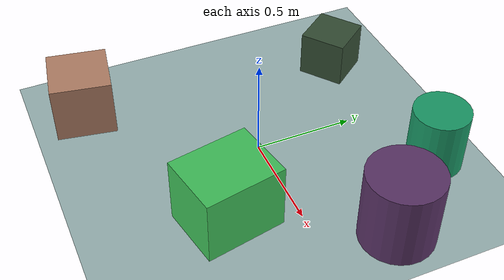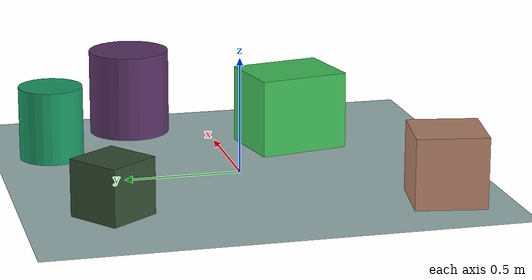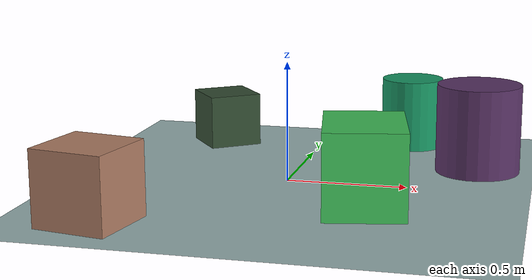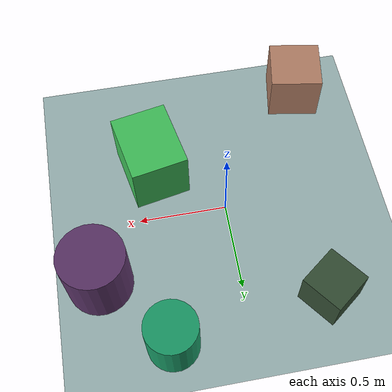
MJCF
<mujoco>
   <asset>
<texture type="skybox" builtin="gradient" rgb1="0.5 0.8 0.3" rgb2="0.5 0.1 0.8" width="500" height="500"/>
<texture name="checker_0" builtin="checker" rgb1="0.5 0.2 0.5" rgb2="0.2 0.2 0.3" width="500" height="500"/>
<texture name="checker_1" builtin="checker" rgb1="0.0 0.6 0.4" rgb2="0.4 0.0 0.0" width="500" height="500"/>
<texture name="flat_2" builtin="flat" rgb1="0.1 0.6 0.4" rgb2="0.1 0.6 0.4"  width="500" height="500"/>
<texture name="gradient_3" builtin="gradient" rgb1="0.9 0.3 0.7" rgb2="0.5 0.7 0.1" width="500" height="500"/>
<texture name="gradient_4" builtin="gradient" rgb1="0.4 0.6 0.4" rgb2="0.1 0.9 0.3" width="500" height="500"/><material name="checker_0_mat" reflectance="0.48493816401581014" texrepeat="6 6" texture="checker_0" texuniform="false" />
<material name="checker_1_mat" reflectance="0.716302056376829" texrepeat="10 10" texture="checker_1" texuniform="false" />
<material name="flat_2_mat" reflectance="0.942341516664423" texture="flat_2" texuniform="true"/>
<material name="gradient_3_mat" reflectance="0.20171994655987913" texture="gradient_3" texuniform="true"/>
<material name="gradient_4_mat" reflectance="0.4270043019150762" texture="gradient_4" texuniform="true"/>
   </asset>

   <worldbody>
     <geom type="plane" size="1 1 0.1" rgba="0.6 0.7 0.7 1" />
<light pos="0.7323756683474494 -0.9992794912914515 2" dir="0 0 -1" cutoff="90" diffuse="1 1 1" specular="1 1 1"/>
<geom type="cylinder" pos="0.76 0.34 0.19" size="0.18 0.19 0.19" material="checker_0_mat" euler="0 0 5" />
<geom type="box" pos="-0.45 0.63 0.12" size="0.12 0.12 0.12" material="checker_1_mat" euler="0 0 37" />
<geom type="cylinder" pos="0.42 0.75 0.16" size="0.14 0.16 0.16" material="flat_2_mat" euler="0 0 8" />
<geom type="box" pos="-0.57 -0.73 0.15" size="0.15 0.15 0.15" material="gradient_3_mat" euler="0 0 80" />
<geom type="box" pos="0.38 -0.32 0.17" size="0.16 0.2 0.17" material="gradient_4_mat" euler="0 0 11" /><camera euler="60 0 180" fovy="60" name="camera1" pos="-0.2 -1.5 1"></camera>   </worldbody>
   <visual>
      <headlight diffuse="0.7 0.7 0.7"/>
   </visual>
</mujoco>
